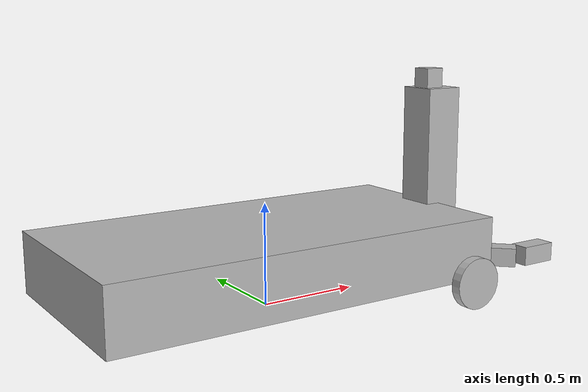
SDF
<?xml version="1.0" ?>
<sdf version="1.5">
  <model name="the_robot">

    <include>
      <uri>model://my_robot</uri>
      <pose>0 0 0 0 0 0</pose>
    </include>

 <link name="riser">
      <pose>1.025 0.0 0.5 0 0 0</pose>
      <collision name="collision">
        <geometry>
          <box>
            <size>0.2 0.2 1.0</size>
          </box>
        </geometry>
        <surface>
          <contact>
            <ode>
              <max_vel>0.0</max_vel> <!--VALEUR PAR DEFAUT DE MAX_VEL EGALE A 0-->
            </ode>
          </contact>
        </surface>
      </collision>
      <visual name="visual">
        <geometry>
          <box>
            <size>0.2 0.2 1.0</size>
          </box>
        </geometry>
      </visual>
    </link>

    <joint type="revolute" name="riser_hinge">
      <pose>1.025 0 -0.03 0 0 0</pose>
      <child>riser</child>
      <parent>mobile_base::chassis</parent>
      <axis>
        <use_parent_model_frame>true</use_parent_model_frame>
        <xyz>0 1 0</xyz>
      </axis>
    </joint>

    <joint name="chassis-riser_joint" type="fixed">
      <parent>mobile_base::chassis</parent>
      <child>riser</child>
    </joint>

    <link name="palm">
      <pose>1.175 0.0 0.1 0 0 0</pose>
      <collision name="collision">
        <geometry>
          <box>
            <size>0.1 0.2 0.1</size>
          </box>
        </geometry>
        <surface>
          <contact>
            <ode>
              <max_vel>0.0</max_vel>
            </ode>
          </contact>
        </surface>
      </collision>
      <visual name="visual">
        <geometry>
          <box>
            <size>0.1 0.2 0.1</size>
          </box>
        </geometry>
      </visual>
    </link>

    <link name="left_finger">
      <pose>1.275 0.2 0.1 0 0 -0.78539</pose>
      <collision name="collision">
        <geometry>
          <box>
            <size>0.1 0.3 0.1</size>
          </box>
        </geometry>
        <surface>
          <friction>
            <ode>
              <mu>0.1</mu>
              <mu2>0</mu2>
            </ode>
          </friction>
          <contact>
            <ode>
              <max_vel>0.0</max_vel>
            </ode>
          </contact>
        </surface>
      </collision>
      <visual name="visual">
        <geometry>
          <box>
            <size>0.1 0.3 0.1</size>
          </box>
        </geometry>
      </visual>
    </link>

    <link name="left_finger_tip">
      <pose>1.511 0.3 0.1 0 0 1.5707</pose>
      <collision name="collision">
        <geometry>
          <box>
            <size>0.1 0.2 0.1</size>
          </box>
        </geometry>
        <surface>
          <friction>
            <ode>
              <mu>.1</mu>
              <mu2>0</mu2>
            </ode>
          </friction>
          <contact>
            <ode>
              <max_vel>0.0</max_vel>
            </ode>
          </contact>
        </surface>
      </collision>
      <visual name="visual">
        <geometry>
          <box>
            <size>0.1 0.2 0.1</size>
          </box>
        </geometry>
      </visual>
    </link>
    <link name="right_finger">
      <pose>1.275 -0.2 0.1 0 0 .78539</pose>
      <collision name="collision">
        <geometry>
          <box>
            <size>0.1 0.3 0.1</size>
          </box>
        </geometry>
        <surface>
          <friction>
            <ode>
              <mu>0.1</mu>
              <mu2>0</mu2>
            </ode>
          </friction>
          <contact>
            <ode>
              <max_vel>0.0</max_vel>
            </ode>
          </contact>
        </surface>
      </collision>
      <visual name="visual">
        <geometry>
          <box>
            <size>0.1 0.3 0.1</size>
          </box>
        </geometry>
      </visual>
    </link>
    <link name="right_finger_tip">
      <pose>1.511 -0.3 0.1 0 0 1.5707</pose>
      <collision name="collision">
        <geometry>
          <box>
            <size>0.1 0.2 0.1</size>
          </box>
        </geometry>
        <surface>
          <friction>
            <ode>
              <mu>0.1</mu>
              <mu2>0</mu2>
            </ode>
          </friction>
          <contact>
            <ode>
              <max_vel>0.0</max_vel>
            </ode>
          </contact>
        </surface>
      </collision>
      <visual name="visual">
        <geometry>
          <box>
            <size>0.1 0.2 0.1</size>
          </box>
        </geometry>
      </visual>
    </link>
    <joint name="palm_left_finger" type="revolute">
      <child>left_finger</child>
      <parent>palm</parent>
      <axis>
        <limit>
          <lower>-0.8</lower>
          <upper>0.8</upper>
        </limit>
        <xyz>0 0 1</xyz>
        <use_parent_model_frame>true</use_parent_model_frame>
      </axis>
    </joint>
    <joint name="left_finger_tip" type="revolute">
      <child>left_finger_tip</child>
      <parent>left_finger</parent>
      <axis>
        <limit>
          <lower>-0.8</lower>
          <upper>0.8</upper>
        </limit>
        <xyz>0 0 1</xyz>
        <use_parent_model_frame>true</use_parent_model_frame>
      </axis>
    </joint>
    <joint name="palm_right_finger" type="revolute">
      <child>right_finger</child>
      <parent>palm</parent>
      <axis>
        <limit>
          <lower>-0.8</lower>
          <upper>0.8</upper>
        </limit>
        <xyz>0 0 1</xyz>
        <use_parent_model_frame>true</use_parent_model_frame>
      </axis>
    </joint>
    <joint name="right_finger_tip" type="revolute">
      <child>right_finger_tip</child>
      <parent>right_finger</parent>
      <axis>
        <limit>
          <lower>-0.8</lower>
          <upper>0.8</upper>
        </limit>
        <xyz>0 0 1</xyz>
        <use_parent_model_frame>true</use_parent_model_frame>
      </axis>
    </joint>
    <joint name="palm_riser" type="prismatic">
      <child>palm</child>
      <parent>riser</parent>
      <axis>
        <limit>
          <lower>0</lower>
          <upper>0.9</upper>
        </limit>
        <xyz>0 0 1</xyz>
        <use_parent_model_frame>true</use_parent_model_frame>
      </axis>
    </joint>
    <gripper name="simple_gripper">
      <grasp_check>
        <detach_steps>40</detach_steps>
        <attach_steps>20</attach_steps>
        <min_contact_count>2</min_contact_count>
      </grasp_check>
      <gripper_link>right_finger</gripper_link>
      <gripper_link>right_finger_tip</gripper_link>
      <gripper_link>left_finger</gripper_link>
      <gripper_link>left_finger_tip</gripper_link>
      <palm_link>palm</palm_link>
    </gripper>

    <link name="camera_link">
      <pose>1.0 0 1.05 0 0 0</pose>
      <collision name="collision">
        <geometry>
          <box>
            <size>0.1 0.1 0.1</size>
          </box>
        </geometry>
      </collision>
      <visual name="visual">
        <geometry>
          <box>
            <size>0.1 0.1 0.1</size>
          </box>
        </geometry>
      </visual>
      <sensor name="camera" type="camera">
        <camera>
          <horizontal_fov>1.047</horizontal_fov>
          <image>
            <width>320</width>
            <height>240</height>
          </image>
          <clip>
            <near>0.1</near>
            <far>100</far>
          </clip>
        </camera>

        <plugin name="camera_controller" filename="libgazebo_ros_camera.so">
          <alwaysOn>true</alwaysOn>
          <updateRate>0.0</updateRate>
          <cameraName>the_robot_camera/camera1</cameraName>
          <imageTopicName>image_raw</imageTopicName>
          <cameraInfoTopicName>camera_info</cameraInfoTopicName>
          <frameName>camera_link</frameName>
          <hackBaseline>0.07</hackBaseline>
        </plugin>

      </sensor>
    </link>

    <joint name="camera_joint" type="fixed">
      <child>camera_link</child>
      <parent>riser</parent>
    </joint>

    <joint name="arm_gripper_joint" type="fixed">
      <parent>mobile_base::chassis</parent>
      <child>riser</child>
    </joint>

    <!-- attach sensor to the gripper -->
    <link name="hokuyo_link">

    <sensor type="ray" name="head_hokuyo_sensor">
      <pose>1.3 0 0.3 0 0 0</pose>
      <visualize>true</visualize>
      <update_rate>40</update_rate>
      <ray>
        <scan>
          <horizontal>
            <samples>720</samples>
            <resolution>1</resolution>
            <min_angle>-1.570796</min_angle>
            <max_angle>1.570796</max_angle>
          </horizontal>
        </scan>
        <range>
          <min>0.10</min>
          <max>30.0</max>
          <resolution>0.01</resolution>
        </range>
        <noise>
          <type>gaussian</type>
          <mean>0.0</mean>
          <stddev>0.01</stddev>
        </noise>
      </ray>
      <plugin name="gazebo_ros_head_hokuyo_controller" filename="libgazebo_ros_laser.so">
        <topicName>/the_robot/laser_scan</topicName>
        <frameName>hokuyo_link</frameName>
      </plugin>
    </sensor>

    </link>

    <joint name="hokuyo_joint" type="fixed">
      <child>hokuyo_link</child>
      <parent>palm</parent>
    </joint>

    <plugin name="differential_drive_controller" filename="libgazebo_ros_diff_drive.so">

  <alwaysOn>true</alwaysOn>
  <updateRate>100</updateRate>
  <leftJoint>mobile_base::left_wheel_hinge</leftJoint>
  <rightJoint>mobile_base::right_wheel_hinge</rightJoint>
  <wheelSeparation>0.39</wheelSeparation>
  <wheelDiameter>0.15</wheelDiameter>
  <torque>5</torque>
  <commandTopic>cmd_vel</commandTopic>
   <odometryTopic>odom</odometryTopic>
   <odometryFrame>odom</odometryFrame>
  <robotBaseFrame>mobile_base::chassis</robotBaseFrame>
  <publishWheelTF>true</publishWheelTF>
  <publishWheelJointState>true</publishWheelJointState>
  <rosDebugLevel>na</rosDebugLevel>
  <publishOdomTF>true</publishOdomTF>
  <wheelAcceleration>10</wheelAcceleration>
  <wheelTorque>5</wheelTorque>
  <odometrySource>world</odometrySource>
  <publishTf>1</publishTf>

    </plugin>

  </model>
</sdf>

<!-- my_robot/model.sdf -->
<sdf version='1.4'>

  <model name="mobile_base">
    <link name='chassis'>
      <pose>0 0 .25 0 0 0</pose>

      <inertial>
        <mass>20.0</mass>
        <pose>-0.1 0 -0.1 0 0 0</pose>
        <inertia>
          <ixx>0.5</ixx>
          <iyy>1.0</iyy>
          <izz>0.1</izz>
        </inertia>
      </inertial>

      <collision name='collision'>
        <geometry>
          <box>
            <size>2 1 0.3</size>
          </box>
        </geometry>
      </collision>

      <visual name='visual'>
        <geometry>
          <box>
            <size>2 1 0.3</size>
          </box>
        </geometry>
      </visual>

      <collision name='caster_collision'>
        <pose>-0.8 0 -0.125 0 0 0</pose>
        <geometry>
          <sphere>
            <radius>.125</radius>
          </sphere>
        </geometry>

        <surface>
          <friction>
            <ode>
              <mu>0</mu>
              <mu2>0</mu2>
            </ode>
          </friction>
        </surface>
      </collision>

      <visual name='caster_visual'>
        <pose>-0.8 0 -0.125 0 0 0</pose>
        <geometry>
          <sphere>
            <radius>.125</radius>
          </sphere>
        </geometry>
      </visual>
    </link>
    <link name="left_wheel">
      <pose>0.8 0.6 0.125 0 1.5707 1.5707</pose>
      <collision name="collision">
        <geometry>
          <cylinder>
            <radius>.125</radius>
            <length>.05</length>
          </cylinder>
        </geometry>
      </collision>
      <visual name="visual">
        <geometry>
          <cylinder>
            <radius>.125</radius>
            <length>.05</length>
          </cylinder>
        </geometry>
      </visual>
    </link>

    <link name="right_wheel">
      <pose>0.8 -0.6 0.125 0 1.5707 1.5707</pose>
      <collision name="collision">
        <geometry>
          <cylinder>
            <radius>.125</radius>
            <length>.05</length>
          </cylinder>
        </geometry>
      </collision>
      <visual name="visual">
        <geometry>
          <cylinder>
            <radius>.125</radius>
            <length>.05</length>
          </cylinder>
        </geometry>
      </visual>
    </link>

    <joint type="revolute" name="left_wheel_hinge">
      <pose>0 0 -0.03 0 0 0</pose>
      <child>left_wheel</child>
      <parent>chassis</parent>
      <axis>
        <use_parent_model_frame>true</use_parent_model_frame>
        <xyz>0 1 0</xyz>
      </axis>
    </joint>

    <joint type="revolute" name="right_wheel_hinge">
      <pose>0 0 0.03 0 0 0</pose>
      <child>right_wheel</child>
      <parent>chassis</parent>
      <axis>
        <use_parent_model_frame>true</use_parent_model_frame>
        <xyz>0 1 0</xyz>
      </axis>
    </joint>

</model>

</sdf>
